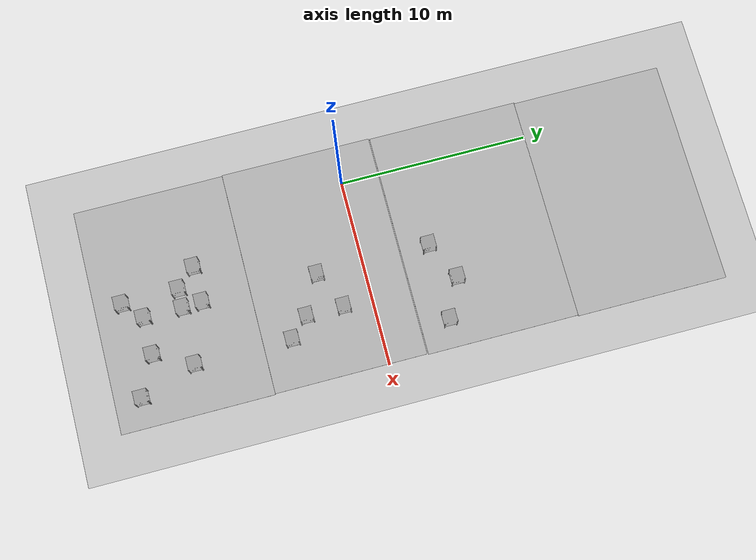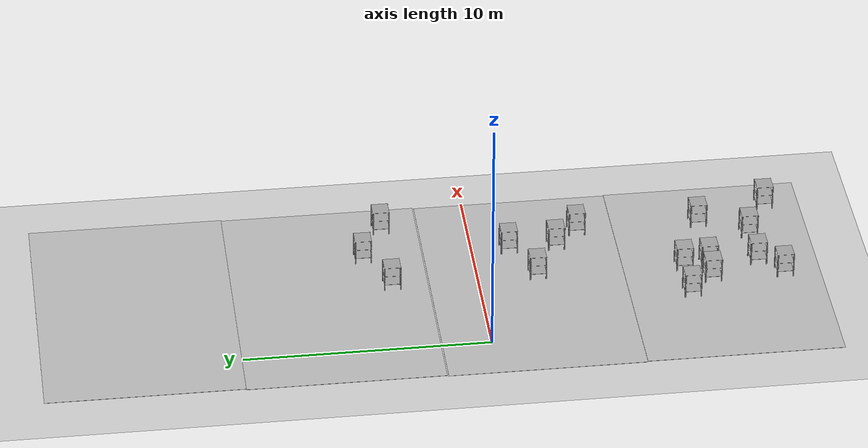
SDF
<sdf version="1.7">
 <world name="default">
  <light name="sun" type="directional">
   <pose>0 0 10 0 -0 0</pose>
   <diffuse>0.8 0.8 0.8 1</diffuse>
   <specular>0.2 0.2 0.2 1</specular>
   <attenuation>
    <range>1000</range>
    <constant>0.9</constant>
    <linear>0.01</linear>
    <quadratic>0.001</quadratic>
   </attenuation>
   <direction>-0.5 0.1 -0.9</direction>
   <spot><inner_angle>0</inner_angle><outer_angle>0</outer_angle><falloff>0</falloff></spot>
  </light>
  <model name="ground_plane">
   <static>1</static>
   <link name="link">
    <collision name="collision">
     <geometry><plane><normal>0 0 1</normal><size>100 100</size></plane></geometry>
     <surface><friction><ode><mu>100</mu><mu2>50</mu2></ode></friction></surface>
    </collision>
    <visual name="visual">
     <cast_shadows>0</cast_shadows>
     <geometry><plane><normal>0 0 1</normal><size>100 100</size></plane></geometry>
     <material>
      <script><uri>file://media/materials/scripts/gazebo.material</uri><name>Gazebo/Grey</name></script>
     </material>
    </visual>
   </link>
  </model>
  <gravity>0 0 -9.8</gravity>
  <magnetic_field>6e-06 2.3e-05 -4.2e-05</magnetic_field>
  <atmosphere type="adiabatic"/>
  <physics type="ode">
   <max_step_size>0.001</max_step_size>
   <real_time_factor>1</real_time_factor>
   <real_time_update_rate>1000</real_time_update_rate>
  </physics>
  <scene><ambient>0.4 0.4 0.4 1</ambient><background>0.7 0.7 0.7 1</background><shadows>1</shadows></scene>
  <spherical_coordinates>
   <surface_model>EARTH_WGS84</surface_model>
   <latitude_deg>0</latitude_deg>
   <longitude_deg>0</longitude_deg>
   <elevation>0</elevation>
   <heading_deg>0</heading_deg>
  </spherical_coordinates>
  <model name="warehouse">
   <static>1</static>
   <link name="link">
    <collision name="collision">
     <geometry><mesh><uri>model://warehouse/meshes/warehouse.dae</uri><scale>1 1 1</scale></mesh></geometry>
    </collision>
    <visual name="visual">
     <geometry><mesh><uri>model://warehouse/meshes/warehouse.dae</uri><scale>1 1 1</scale></mesh></geometry>
    </visual>
   </link>
   <pose>3.97584 6.05262 0 0 -0 0</pose>
  </model>
  <model name="warehouse_clone">
   <static>1</static>
   <link name="link">
    <collision name="collision">
     <geometry><mesh><uri>model://warehouse/meshes/warehouse.dae</uri><scale>1 1 1</scale></mesh></geometry>
    </collision>
    <visual name="visual">
     <geometry><mesh><uri>model://warehouse/meshes/warehouse.dae</uri><scale>1 1 1</scale></mesh></geometry>
    </visual>
   </link>
   <pose>3.93539 -2.00112 0 0 -0 0</pose>
  </model>
  <model name="warehouse_clone_clone">
   <static>1</static>
   <link name="link">
    <collision name="collision">
     <geometry><mesh><uri>model://warehouse/meshes/warehouse.dae</uri><scale>1 1 1</scale></mesh></geometry>
    </collision>
    <visual name="visual">
     <geometry><mesh><uri>model://warehouse/meshes/warehouse.dae</uri><scale>1 1 1</scale></mesh></geometry>
    </visual>
   </link>
   <pose>3.97866 -10.0042 0 0 -0 0</pose>
  </model>
  <model name="warehouse_clone_0">
   <static>1</static>
   <link name="link">
    <collision name="collision">
     <geometry><mesh><uri>model://warehouse/meshes/warehouse.dae</uri><scale>1 1 1</scale></mesh></geometry>
    </collision>
    <visual name="visual">
     <geometry><mesh><uri>model://warehouse/meshes/warehouse.dae</uri><scale>1 1 1</scale></mesh></geometry>
    </visual>
   </link>
   <pose>4.02465 14.0396 0 0 -0 0</pose>
  </model>
  <model name="shelf">
   <link name="link">
    <inertial>
     <mass>0.1</mass>
     <inertia><ixx>1</ixx><ixy>0</ixy><ixz>0</ixz><iyy>1</iyy><iyz>0</iyz><izz>1</izz></inertia>
    </inertial>
    <visual name="visual">
     <geometry><mesh><uri>model://shelf/meshes/shelf.dae</uri><scale>1 1 1</scale></mesh></geometry>
    </visual>
    <collision name="collision">
     <geometry><mesh><uri>model://shelf/meshes/shelf.dae</uri><scale>1 1 1</scale></mesh></geometry>
     <surface>
      <friction>
       <ode><mu>1</mu><mu2>1</mu2><fdir1>0 0 0</fdir1><slip1>0</slip1><slip2>0</slip2></ode>
       <torsional>
        <coefficient>1</coefficient>
        <patch_radius>1</patch_radius>
        <surface_radius>1</surface_radius>
        <use_patch_radius>1</use_patch_radius>
        <ode><slip>0</slip></ode>
       </torsional>
      </friction>
      <bounce><restitution_coefficient>1</restitution_coefficient><threshold>1e+06</threshold></bounce>
      <contact>
       <collide_without_contact>0</collide_without_contact>
       <collide_without_contact_bitmask>1</collide_without_contact_bitmask>
       <collide_bitmask>1</collide_bitmask>
       <ode>
        <soft_cfm>0</soft_cfm>
        <soft_erp>0.2</soft_erp>
        <kp>1e+13</kp>
        <kd>1</kd>
        <max_vel>0.01</max_vel>
        <min_depth>0</min_depth>
       </ode>
       <bullet>
        <split_impulse>1</split_impulse>
        <split_impulse_penetration_threshold>-0.01</split_impulse_penetration_threshold>
        <soft_cfm>0</soft_cfm>
        <soft_erp>0.2</soft_erp>
        <kp>1e+13</kp>
        <kd>1</kd>
       </bullet>
      </contact>
     </surface>
    </collision>
   </link>
   <static>0</static>
   <pose>6.51832 -3.49742 0 0 -0 0</pose>
  </model>
  <model name="shelf_clone_0">
   <link name="link">
    <inertial>
     <mass>0.1</mass>
     <inertia><ixx>1</ixx><ixy>0</ixy><ixz>0</ixz><iyy>1</iyy><iyz>0</iyz><izz>1</izz></inertia>
    </inertial>
    <visual name="visual">
     <geometry><mesh><uri>model://shelf/meshes/shelf.dae</uri><scale>1 1 1</scale></mesh></geometry>
    </visual>
    <collision name="collision">
     <geometry><mesh><uri>model://shelf/meshes/shelf.dae</uri><scale>1 1 1</scale></mesh></geometry>
     <surface>
      <friction>
       <ode><mu>1</mu><mu2>1</mu2><fdir1>0 0 0</fdir1><slip1>0</slip1><slip2>0</slip2></ode>
       <torsional>
        <coefficient>1</coefficient>
        <patch_radius>1</patch_radius>
        <surface_radius>1</surface_radius>
        <use_patch_radius>1</use_patch_radius>
        <ode><slip>0</slip></ode>
       </torsional>
      </friction>
      <bounce><restitution_coefficient>1</restitution_coefficient><threshold>1e+06</threshold></bounce>
      <contact>
       <collide_without_contact>0</collide_without_contact>
       <collide_without_contact_bitmask>1</collide_without_contact_bitmask>
       <collide_bitmask>1</collide_bitmask>
       <ode>
        <soft_cfm>0</soft_cfm>
        <soft_erp>0.2</soft_erp>
        <kp>1e+13</kp>
        <kd>1</kd>
        <max_vel>0.01</max_vel>
        <min_depth>0</min_depth>
       </ode>
       <bullet>
        <split_impulse>1</split_impulse>
        <split_impulse_penetration_threshold>-0.01</split_impulse_penetration_threshold>
        <soft_cfm>0</soft_cfm>
        <soft_erp>0.2</soft_erp>
        <kp>1e+13</kp>
        <kd>1</kd>
       </bullet>
      </contact>
     </surface>
    </collision>
   </link>
   <static>0</static>
   <pose>4.5161 -2.45788 0 0 -0 0</pose>
  </model>
  <model name="shelf_clone">
   <link name="link">
    <inertial>
     <mass>0.1</mass>
     <inertia><ixx>1</ixx><ixy>0</ixy><ixz>0</ixz><iyy>1</iyy><iyz>0</iyz><izz>1</izz></inertia>
    </inertial>
    <visual name="visual">
     <geometry><mesh><uri>model://shelf/meshes/shelf.dae</uri><scale>1 1 1</scale></mesh></geometry>
    </visual>
    <collision name="collision">
     <geometry><mesh><uri>model://shelf/meshes/shelf.dae</uri><scale>1 1 1</scale></mesh></geometry>
     <surface>
      <friction>
       <ode><mu>1</mu><mu2>1</mu2><fdir1>0 0 0</fdir1><slip1>0</slip1><slip2>0</slip2></ode>
       <torsional>
        <coefficient>1</coefficient>
        <patch_radius>1</patch_radius>
        <surface_radius>1</surface_radius>
        <use_patch_radius>1</use_patch_radius>
        <ode><slip>0</slip></ode>
       </torsional>
      </friction>
      <bounce><restitution_coefficient>1</restitution_coefficient><threshold>1e+06</threshold></bounce>
      <contact>
       <collide_without_contact>0</collide_without_contact>
       <collide_without_contact_bitmask>1</collide_without_contact_bitmask>
       <collide_bitmask>1</collide_bitmask>
       <ode>
        <soft_cfm>0</soft_cfm>
        <soft_erp>0.2</soft_erp>
        <kp>1e+13</kp>
        <kd>1</kd>
        <max_vel>0.01</max_vel>
        <min_depth>0</min_depth>
       </ode>
       <bullet>
        <split_impulse>1</split_impulse>
        <split_impulse_penetration_threshold>-0.01</split_impulse_penetration_threshold>
        <soft_cfm>0</soft_cfm>
        <soft_erp>0.2</soft_erp>
        <kp>1e+13</kp>
        <kd>1</kd>
       </bullet>
      </contact>
     </surface>
    </collision>
   </link>
   <static>0</static>
   <pose>6.50738 -1.53286 0 0 -0 0</pose>
  </model>
  <model name="shelf_clone_clone">
   <link name="link">
    <inertial>
     <mass>0.1</mass>
     <inertia><ixx>1</ixx><ixy>0</ixy><ixz>0</ixz><iyy>1</iyy><iyz>0</iyz><izz>1</izz></inertia>
    </inertial>
    <visual name="visual">
     <geometry><mesh><uri>model://shelf/meshes/shelf.dae</uri><scale>1 1 1</scale></mesh></geometry>
    </visual>
    <collision name="collision">
     <geometry><mesh><uri>model://shelf/meshes/shelf.dae</uri><scale>1 1 1</scale></mesh></geometry>
     <surface>
      <friction>
       <ode><mu>1</mu><mu2>1</mu2><fdir1>0 0 0</fdir1><slip1>0</slip1><slip2>0</slip2></ode>
       <torsional>
        <coefficient>1</coefficient>
        <patch_radius>1</patch_radius>
        <surface_radius>1</surface_radius>
        <use_patch_radius>1</use_patch_radius>
        <ode><slip>0</slip></ode>
       </torsional>
      </friction>
      <bounce><restitution_coefficient>1</restitution_coefficient><threshold>1e+06</threshold></bounce>
      <contact>
       <collide_without_contact>0</collide_without_contact>
       <collide_without_contact_bitmask>1</collide_without_contact_bitmask>
       <collide_bitmask>1</collide_bitmask>
       <ode>
        <soft_cfm>0</soft_cfm>
        <soft_erp>0.2</soft_erp>
        <kp>1e+13</kp>
        <kd>1</kd>
        <max_vel>0.01</max_vel>
        <min_depth>0</min_depth>
       </ode>
       <bullet>
        <split_impulse>1</split_impulse>
        <split_impulse_penetration_threshold>-0.01</split_impulse_penetration_threshold>
        <soft_cfm>0</soft_cfm>
        <soft_erp>0.2</soft_erp>
        <kp>1e+13</kp>
        <kd>1</kd>
       </bullet>
      </contact>
     </surface>
    </collision>
   </link>
   <static>0</static>
   <pose>7.4953 -4.48691 0 0 -0 0</pose>
  </model>
  <model name="shelf_clone_clone_0">
   <link name="link">
    <inertial>
     <mass>0.1</mass>
     <inertia><ixx>1</ixx><ixy>0</ixy><ixz>0</ixz><iyy>1</iyy><iyz>0</iyz><izz>1</izz></inertia>
    </inertial>
    <visual name="visual">
     <geometry><mesh><uri>model://shelf/meshes/shelf.dae</uri><scale>1 1 1</scale></mesh></geometry>
    </visual>
    <collision name="collision">
     <geometry><mesh><uri>model://shelf/meshes/shelf.dae</uri><scale>1 1 1</scale></mesh></geometry>
     <surface>
      <friction>
       <ode><mu>1</mu><mu2>1</mu2><fdir1>0 0 0</fdir1><slip1>0</slip1><slip2>0</slip2></ode>
       <torsional>
        <coefficient>1</coefficient>
        <patch_radius>1</patch_radius>
        <surface_radius>1</surface_radius>
        <use_patch_radius>1</use_patch_radius>
        <ode><slip>0</slip></ode>
       </torsional>
      </friction>
      <bounce><restitution_coefficient>1</restitution_coefficient><threshold>1e+06</threshold></bounce>
      <contact>
       <collide_without_contact>0</collide_without_contact>
       <collide_without_contact_bitmask>1</collide_without_contact_bitmask>
       <collide_bitmask>1</collide_bitmask>
       <ode>
        <soft_cfm>0</soft_cfm>
        <soft_erp>0.2</soft_erp>
        <kp>1e+13</kp>
        <kd>1</kd>
        <max_vel>0.01</max_vel>
        <min_depth>0</min_depth>
       </ode>
       <bullet>
        <split_impulse>1</split_impulse>
        <split_impulse_penetration_threshold>-0.01</split_impulse_penetration_threshold>
        <soft_cfm>0</soft_cfm>
        <soft_erp>0.2</soft_erp>
        <kp>1e+13</kp>
        <kd>1</kd>
       </bullet>
      </contact>
     </surface>
    </collision>
   </link>
   <static>0</static>
   <pose>7.48567 -9.57472 0 0 -0 0</pose>
  </model>
  <model name="shelf_clone_clone_1">
   <link name="link">
    <inertial>
     <mass>0.1</mass>
     <inertia><ixx>1</ixx><ixy>0</ixy><ixz>0</ixz><iyy>1</iyy><iyz>0</iyz><izz>1</izz></inertia>
    </inertial>
    <visual name="visual">
     <geometry><mesh><uri>model://shelf/meshes/shelf.dae</uri><scale>1 1 1</scale></mesh></geometry>
    </visual>
    <collision name="collision">
     <geometry><mesh><uri>model://shelf/meshes/shelf.dae</uri><scale>1 1 1</scale></mesh></geometry>
     <surface>
      <friction>
       <ode><mu>1</mu><mu2>1</mu2><fdir1>0 0 0</fdir1><slip1>0</slip1><slip2>0</slip2></ode>
       <torsional>
        <coefficient>1</coefficient>
        <patch_radius>1</patch_radius>
        <surface_radius>1</surface_radius>
        <use_patch_radius>1</use_patch_radius>
        <ode><slip>0</slip></ode>
       </torsional>
      </friction>
      <bounce><restitution_coefficient>1</restitution_coefficient><threshold>1e+06</threshold></bounce>
      <contact>
       <collide_without_contact>0</collide_without_contact>
       <collide_without_contact_bitmask>1</collide_without_contact_bitmask>
       <collide_bitmask>1</collide_bitmask>
       <ode>
        <soft_cfm>0</soft_cfm>
        <soft_erp>0.2</soft_erp>
        <kp>1e+13</kp>
        <kd>1</kd>
        <max_vel>0.01</max_vel>
        <min_depth>0</min_depth>
       </ode>
       <bullet>
        <split_impulse>1</split_impulse>
        <split_impulse_penetration_threshold>-0.01</split_impulse_penetration_threshold>
        <soft_cfm>0</soft_cfm>
        <soft_erp>0.2</soft_erp>
        <kp>1e+13</kp>
        <kd>1</kd>
       </bullet>
      </contact>
     </surface>
    </collision>
   </link>
   <static>0</static>
   <pose>6.45776 -11.5438 0 0 -0 0</pose>
  </model>
  <model name="shelf_clone_clone_2">
   <link name="link">
    <inertial>
     <mass>0.1</mass>
     <inertia><ixx>1</ixx><ixy>0</ixy><ixz>0</ixz><iyy>1</iyy><iyz>0</iyz><izz>1</izz></inertia>
    </inertial>
    <visual name="visual">
     <geometry><mesh><uri>model://shelf/meshes/shelf.dae</uri><scale>1 1 1</scale></mesh></geometry>
    </visual>
    <collision name="collision">
     <geometry><mesh><uri>model://shelf/meshes/shelf.dae</uri><scale>1 1 1</scale></mesh></geometry>
     <surface>
      <friction>
       <ode><mu>1</mu><mu2>1</mu2><fdir1>0 0 0</fdir1><slip1>0</slip1><slip2>0</slip2></ode>
       <torsional>
        <coefficient>1</coefficient>
        <patch_radius>1</patch_radius>
        <surface_radius>1</surface_radius>
        <use_patch_radius>1</use_patch_radius>
        <ode><slip>0</slip></ode>
       </torsional>
      </friction>
      <bounce><restitution_coefficient>1</restitution_coefficient><threshold>1e+06</threshold></bounce>
      <contact>
       <collide_without_contact>0</collide_without_contact>
       <collide_without_contact_bitmask>1</collide_without_contact_bitmask>
       <collide_bitmask>1</collide_bitmask>
       <ode>
        <soft_cfm>0</soft_cfm>
        <soft_erp>0.2</soft_erp>
        <kp>1e+13</kp>
        <kd>1</kd>
        <max_vel>0.01</max_vel>
        <min_depth>0</min_depth>
       </ode>
       <bullet>
        <split_impulse>1</split_impulse>
        <split_impulse_penetration_threshold>-0.01</split_impulse_penetration_threshold>
        <soft_cfm>0</soft_cfm>
        <soft_erp>0.2</soft_erp>
        <kp>1e+13</kp>
        <kd>1</kd>
       </bullet>
      </contact>
     </surface>
    </collision>
   </link>
   <static>0</static>
   <pose>4.42444 -8.50036 0 0 -0 0</pose>
  </model>
  <model name="shelf_clone_clone_3">
   <link name="link">
    <inertial>
     <mass>0.1</mass>
     <inertia><ixx>1</ixx><ixy>0</ixy><ixz>0</ixz><iyy>1</iyy><iyz>0</iyz><izz>1</izz></inertia>
    </inertial>
    <visual name="visual">
     <geometry><mesh><uri>model://shelf/meshes/shelf.dae</uri><scale>1 1 1</scale></mesh></geometry>
    </visual>
    <collision name="collision">
     <geometry><mesh><uri>model://shelf/meshes/shelf.dae</uri><scale>1 1 1</scale></mesh></geometry>
     <surface>
      <friction>
       <ode><mu>1</mu><mu2>1</mu2><fdir1>0 0 0</fdir1><slip1>0</slip1><slip2>0</slip2></ode>
       <torsional>
        <coefficient>1</coefficient>
        <patch_radius>1</patch_radius>
        <surface_radius>1</surface_radius>
        <use_patch_radius>1</use_patch_radius>
        <ode><slip>0</slip></ode>
       </torsional>
      </friction>
      <bounce><restitution_coefficient>1</restitution_coefficient><threshold>1e+06</threshold></bounce>
      <contact>
       <collide_without_contact>0</collide_without_contact>
       <collide_without_contact_bitmask>1</collide_without_contact_bitmask>
       <collide_bitmask>1</collide_bitmask>
       <ode>
        <soft_cfm>0</soft_cfm>
        <soft_erp>0.2</soft_erp>
        <kp>1e+13</kp>
        <kd>1</kd>
        <max_vel>0.01</max_vel>
        <min_depth>0</min_depth>
       </ode>
       <bullet>
        <split_impulse>1</split_impulse>
        <split_impulse_penetration_threshold>-0.01</split_impulse_penetration_threshold>
        <soft_cfm>0</soft_cfm>
        <soft_erp>0.2</soft_erp>
        <kp>1e+13</kp>
        <kd>1</kd>
       </bullet>
      </contact>
     </surface>
    </collision>
   </link>
   <static>0</static>
   <pose>2.52032 -8.53075 0 0 -0 0</pose>
  </model>
  <model name="shelf_clone_clone_4">
   <link name="link">
    <inertial>
     <mass>0.1</mass>
     <inertia><ixx>1</ixx><ixy>0</ixy><ixz>0</ixz><iyy>1</iyy><iyz>0</iyz><izz>1</izz></inertia>
    </inertial>
    <visual name="visual">
     <geometry><mesh><uri>model://shelf/meshes/shelf.dae</uri><scale>1 1 1</scale></mesh></geometry>
    </visual>
    <collision name="collision">
     <geometry><mesh><uri>model://shelf/meshes/shelf.dae</uri><scale>1 1 1</scale></mesh></geometry>
     <surface>
      <friction>
       <ode><mu>1</mu><mu2>1</mu2><fdir1>0 0 0</fdir1><slip1>0</slip1><slip2>0</slip2></ode>
       <torsional>
        <coefficient>1</coefficient>
        <patch_radius>1</patch_radius>
        <surface_radius>1</surface_radius>
        <use_patch_radius>1</use_patch_radius>
        <ode><slip>0</slip></ode>
       </torsional>
      </friction>
      <bounce><restitution_coefficient>1</restitution_coefficient><threshold>1e+06</threshold></bounce>
      <contact>
       <collide_without_contact>0</collide_without_contact>
       <collide_without_contact_bitmask>1</collide_without_contact_bitmask>
       <collide_bitmask>1</collide_bitmask>
       <ode>
        <soft_cfm>0</soft_cfm>
        <soft_erp>0.2</soft_erp>
        <kp>1e+13</kp>
        <kd>1</kd>
        <max_vel>0.01</max_vel>
        <min_depth>0</min_depth>
       </ode>
       <bullet>
        <split_impulse>1</split_impulse>
        <split_impulse_penetration_threshold>-0.01</split_impulse_penetration_threshold>
        <soft_cfm>0</soft_cfm>
        <soft_erp>0.2</soft_erp>
        <kp>1e+13</kp>
        <kd>1</kd>
       </bullet>
      </contact>
     </surface>
    </collision>
   </link>
   <static>0</static>
   <pose>3.46882 -9.53002 0 0 -0 0</pose>
  </model>
  <model name="shelf_clone_clone_5">
   <link name="link">
    <inertial>
     <mass>0.1</mass>
     <inertia><ixx>1</ixx><ixy>0</ixy><ixz>0</ixz><iyy>1</iyy><iyz>0</iyz><izz>1</izz></inertia>
    </inertial>
    <visual name="visual">
     <geometry><mesh><uri>model://shelf/meshes/shelf.dae</uri><scale>1 1 1</scale></mesh></geometry>
    </visual>
    <collision name="collision">
     <geometry><mesh><uri>model://shelf/meshes/shelf.dae</uri><scale>1 1 1</scale></mesh></geometry>
     <surface>
      <friction>
       <ode><mu>1</mu><mu2>1</mu2><fdir1>0 0 0</fdir1><slip1>0</slip1><slip2>0</slip2></ode>
       <torsional>
        <coefficient>1</coefficient>
        <patch_radius>1</patch_radius>
        <surface_radius>1</surface_radius>
        <use_patch_radius>1</use_patch_radius>
        <ode><slip>0</slip></ode>
       </torsional>
      </friction>
      <bounce><restitution_coefficient>1</restitution_coefficient><threshold>1e+06</threshold></bounce>
      <contact>
       <collide_without_contact>0</collide_without_contact>
       <collide_without_contact_bitmask>1</collide_without_contact_bitmask>
       <collide_bitmask>1</collide_bitmask>
       <ode>
        <soft_cfm>0</soft_cfm>
        <soft_erp>0.2</soft_erp>
        <kp>1e+13</kp>
        <kd>1</kd>
        <max_vel>0.01</max_vel>
        <min_depth>0</min_depth>
       </ode>
       <bullet>
        <split_impulse>1</split_impulse>
        <split_impulse_penetration_threshold>-0.01</split_impulse_penetration_threshold>
        <soft_cfm>0</soft_cfm>
        <soft_erp>0.2</soft_erp>
        <kp>1e+13</kp>
        <kd>1</kd>
       </bullet>
      </contact>
     </surface>
    </collision>
   </link>
   <static>0</static>
   <pose>4.47207 -9.53829 0 0 -0 0</pose>
  </model>
  <model name="shelf_clone_clone_6">
   <link name="link">
    <inertial>
     <mass>0.1</mass>
     <inertia><ixx>1</ixx><ixy>0</ixy><ixz>0</ixz><iyy>1</iyy><iyz>0</iyz><izz>1</izz></inertia>
    </inertial>
    <visual name="visual">
     <geometry><mesh><uri>model://shelf/meshes/shelf.dae</uri><scale>1 1 1</scale></mesh></geometry>
    </visual>
    <collision name="collision">
     <geometry><mesh><uri>model://shelf/meshes/shelf.dae</uri><scale>1 1 1</scale></mesh></geometry>
     <surface>
      <friction>
       <ode><mu>1</mu><mu2>1</mu2><fdir1>0 0 0</fdir1><slip1>0</slip1><slip2>0</slip2></ode>
       <torsional>
        <coefficient>1</coefficient>
        <patch_radius>1</patch_radius>
        <surface_radius>1</surface_radius>
        <use_patch_radius>1</use_patch_radius>
        <ode><slip>0</slip></ode>
       </torsional>
      </friction>
      <bounce><restitution_coefficient>1</restitution_coefficient><threshold>1e+06</threshold></bounce>
      <contact>
       <collide_without_contact>0</collide_without_contact>
       <collide_without_contact_bitmask>1</collide_without_contact_bitmask>
       <collide_bitmask>1</collide_bitmask>
       <ode>
        <soft_cfm>0</soft_cfm>
        <soft_erp>0.2</soft_erp>
        <kp>1e+13</kp>
        <kd>1</kd>
        <max_vel>0.01</max_vel>
        <min_depth>0</min_depth>
       </ode>
       <bullet>
        <split_impulse>1</split_impulse>
        <split_impulse_penetration_threshold>-0.01</split_impulse_penetration_threshold>
        <soft_cfm>0</soft_cfm>
        <soft_erp>0.2</soft_erp>
        <kp>1e+13</kp>
        <kd>1</kd>
       </bullet>
      </contact>
     </surface>
    </collision>
   </link>
   <static>0</static>
   <pose>3.50628 -12.5062 0 0 -0 0</pose>
  </model>
  <model name="shelf_clone_clone_7">
   <link name="link">
    <inertial>
     <mass>0.1</mass>
     <inertia><ixx>1</ixx><ixy>0</ixy><ixz>0</ixz><iyy>1</iyy><iyz>0</iyz><izz>1</izz></inertia>
    </inertial>
    <visual name="visual">
     <geometry><mesh><uri>model://shelf/meshes/shelf.dae</uri><scale>1 1 1</scale></mesh></geometry>
    </visual>
    <collision name="collision">
     <geometry><mesh><uri>model://shelf/meshes/shelf.dae</uri><scale>1 1 1</scale></mesh></geometry>
     <surface>
      <friction>
       <ode><mu>1</mu><mu2>1</mu2><fdir1>0 0 0</fdir1><slip1>0</slip1><slip2>0</slip2></ode>
       <torsional>
        <coefficient>1</coefficient>
        <patch_radius>1</patch_radius>
        <surface_radius>1</surface_radius>
        <use_patch_radius>1</use_patch_radius>
        <ode><slip>0</slip></ode>
       </torsional>
      </friction>
      <bounce><restitution_coefficient>1</restitution_coefficient><threshold>1e+06</threshold></bounce>
      <contact>
       <collide_without_contact>0</collide_without_contact>
       <collide_without_contact_bitmask>1</collide_without_contact_bitmask>
       <collide_bitmask>1</collide_bitmask>
       <ode>
        <soft_cfm>0</soft_cfm>
        <soft_erp>0.2</soft_erp>
        <kp>1e+13</kp>
        <kd>1</kd>
        <max_vel>0.01</max_vel>
        <min_depth>0</min_depth>
       </ode>
       <bullet>
        <split_impulse>1</split_impulse>
        <split_impulse_penetration_threshold>-0.01</split_impulse_penetration_threshold>
        <soft_cfm>0</soft_cfm>
        <soft_erp>0.2</soft_erp>
        <kp>1e+13</kp>
        <kd>1</kd>
       </bullet>
      </contact>
     </surface>
    </collision>
   </link>
   <static>0</static>
   <pose>4.48065 -11.5735 0 0 -0 0</pose>
  </model>
  <model name="shelf_clone_clone_8">
   <link name="link">
    <inertial>
     <mass>0.1</mass>
     <inertia><ixx>1</ixx><ixy>0</ixy><ixz>0</ixz><iyy>1</iyy><iyz>0</iyz><izz>1</izz></inertia>
    </inertial>
    <visual name="visual">
     <geometry><mesh><uri>model://shelf/meshes/shelf.dae</uri><scale>1 1 1</scale></mesh></geometry>
    </visual>
    <collision name="collision">
     <geometry><mesh><uri>model://shelf/meshes/shelf.dae</uri><scale>1 1 1</scale></mesh></geometry>
     <surface>
      <friction>
       <ode><mu>1</mu><mu2>1</mu2><fdir1>0 0 0</fdir1><slip1>0</slip1><slip2>0</slip2></ode>
       <torsional>
        <coefficient>1</coefficient>
        <patch_radius>1</patch_radius>
        <surface_radius>1</surface_radius>
        <use_patch_radius>1</use_patch_radius>
        <ode><slip>0</slip></ode>
       </torsional>
      </friction>
      <bounce><restitution_coefficient>1</restitution_coefficient><threshold>1e+06</threshold></bounce>
      <contact>
       <collide_without_contact>0</collide_without_contact>
       <collide_without_contact_bitmask>1</collide_without_contact_bitmask>
       <collide_bitmask>1</collide_bitmask>
       <ode>
        <soft_cfm>0</soft_cfm>
        <soft_erp>0.2</soft_erp>
        <kp>1e+13</kp>
        <kd>1</kd>
        <max_vel>0.01</max_vel>
        <min_depth>0</min_depth>
       </ode>
       <bullet>
        <split_impulse>1</split_impulse>
        <split_impulse_penetration_threshold>-0.01</split_impulse_penetration_threshold>
        <soft_cfm>0</soft_cfm>
        <soft_erp>0.2</soft_erp>
        <kp>1e+13</kp>
        <kd>1</kd>
       </bullet>
      </contact>
     </surface>
    </collision>
   </link>
   <static>0</static>
   <pose>8.49217 -12.5322 0 0 -0 0</pose>
  </model>
  <model name="shelf_clone_clone_9">
   <link name="link">
    <inertial>
     <mass>0.1</mass>
     <inertia><ixx>1</ixx><ixy>0</ixy><ixz>0</ixz><iyy>1</iyy><iyz>0</iyz><izz>1</izz></inertia>
    </inertial>
    <visual name="visual">
     <geometry><mesh><uri>model://shelf/meshes/shelf.dae</uri><scale>1 1 1</scale></mesh></geometry>
    </visual>
    <collision name="collision">
     <geometry><mesh><uri>model://shelf/meshes/shelf.dae</uri><scale>1 1 1</scale></mesh></geometry>
     <surface>
      <friction>
       <ode><mu>1</mu><mu2>1</mu2><fdir1>0 0 0</fdir1><slip1>0</slip1><slip2>0</slip2></ode>
       <torsional>
        <coefficient>1</coefficient>
        <patch_radius>1</patch_radius>
        <surface_radius>1</surface_radius>
        <use_patch_radius>1</use_patch_radius>
        <ode><slip>0</slip></ode>
       </torsional>
      </friction>
      <bounce><restitution_coefficient>1</restitution_coefficient><threshold>1e+06</threshold></bounce>
      <contact>
       <collide_without_contact>0</collide_without_contact>
       <collide_without_contact_bitmask>1</collide_without_contact_bitmask>
       <collide_bitmask>1</collide_bitmask>
       <ode>
        <soft_cfm>0</soft_cfm>
        <soft_erp>0.2</soft_erp>
        <kp>1e+13</kp>
        <kd>1</kd>
        <max_vel>0.01</max_vel>
        <min_depth>0</min_depth>
       </ode>
       <bullet>
        <split_impulse>1</split_impulse>
        <split_impulse_penetration_threshold>-0.01</split_impulse_penetration_threshold>
        <soft_cfm>0</soft_cfm>
        <soft_erp>0.2</soft_erp>
        <kp>1e+13</kp>
        <kd>1</kd>
       </bullet>
      </contact>
     </surface>
    </collision>
   </link>
   <static>0</static>
   <pose>4.48169 3.52665 0 0 -0 0</pose>
  </model>
  <model name="shelf_clone_clone_10">
   <link name="link">
    <inertial>
     <mass>0.1</mass>
     <inertia><ixx>1</ixx><ixy>0</ixy><ixz>0</ixz><iyy>1</iyy><iyz>0</iyz><izz>1</izz></inertia>
    </inertial>
    <visual name="visual">
     <geometry><mesh><uri>model://shelf/meshes/shelf.dae</uri><scale>1 1 1</scale></mesh></geometry>
    </visual>
    <collision name="collision">
     <geometry><mesh><uri>model://shelf/meshes/shelf.dae</uri><scale>1 1 1</scale></mesh></geometry>
     <surface>
      <friction>
       <ode><mu>1</mu><mu2>1</mu2><fdir1>0 0 0</fdir1><slip1>0</slip1><slip2>0</slip2></ode>
       <torsional>
        <coefficient>1</coefficient>
        <patch_radius>1</patch_radius>
        <surface_radius>1</surface_radius>
        <use_patch_radius>1</use_patch_radius>
        <ode><slip>0</slip></ode>
       </torsional>
      </friction>
      <bounce><restitution_coefficient>1</restitution_coefficient><threshold>1e+06</threshold></bounce>
      <contact>
       <collide_without_contact>0</collide_without_contact>
       <collide_without_contact_bitmask>1</collide_without_contact_bitmask>
       <collide_bitmask>1</collide_bitmask>
       <ode>
        <soft_cfm>0</soft_cfm>
        <soft_erp>0.2</soft_erp>
        <kp>1e+13</kp>
        <kd>1</kd>
        <max_vel>0.01</max_vel>
        <min_depth>0</min_depth>
       </ode>
       <bullet>
        <split_impulse>1</split_impulse>
        <split_impulse_penetration_threshold>-0.01</split_impulse_penetration_threshold>
        <soft_cfm>0</soft_cfm>
        <soft_erp>0.2</soft_erp>
        <kp>1e+13</kp>
        <kd>1</kd>
       </bullet>
      </contact>
     </surface>
    </collision>
   </link>
   <static>0</static>
   <pose>6.51298 4.50277 0 0 -0 0</pose>
  </model>
  <model name="shelf_clone_clone_11">
   <link name="link">
    <inertial>
     <mass>0.1</mass>
     <inertia><ixx>1</ixx><ixy>0</ixy><ixz>0</ixz><iyy>1</iyy><iyz>0</iyz><izz>1</izz></inertia>
    </inertial>
    <visual name="visual">
     <geometry><mesh><uri>model://shelf/meshes/shelf.dae</uri><scale>1 1 1</scale></mesh></geometry>
    </visual>
    <collision name="collision">
     <geometry><mesh><uri>model://shelf/meshes/shelf.dae</uri><scale>1 1 1</scale></mesh></geometry>
     <surface>
      <friction>
       <ode><mu>1</mu><mu2>1</mu2><fdir1>0 0 0</fdir1><slip1>0</slip1><slip2>0</slip2></ode>
       <torsional>
        <coefficient>1</coefficient>
        <patch_radius>1</patch_radius>
        <surface_radius>1</surface_radius>
        <use_patch_radius>1</use_patch_radius>
        <ode><slip>0</slip></ode>
       </torsional>
      </friction>
      <bounce><restitution_coefficient>1</restitution_coefficient><threshold>1e+06</threshold></bounce>
      <contact>
       <collide_without_contact>0</collide_without_contact>
       <collide_without_contact_bitmask>1</collide_without_contact_bitmask>
       <collide_bitmask>1</collide_bitmask>
       <ode>
        <soft_cfm>0</soft_cfm>
        <soft_erp>0.2</soft_erp>
        <kp>1e+13</kp>
        <kd>1</kd>
        <max_vel>0.01</max_vel>
        <min_depth>0</min_depth>
       </ode>
       <bullet>
        <split_impulse>1</split_impulse>
        <split_impulse_penetration_threshold>-0.01</split_impulse_penetration_threshold>
        <soft_cfm>0</soft_cfm>
        <soft_erp>0.2</soft_erp>
        <kp>1e+13</kp>
        <kd>1</kd>
       </bullet>
      </contact>
     </surface>
    </collision>
   </link>
   <static>0</static>
   <pose>8.52335 3.54941 0 0 -0 0</pose>
  </model>
 </world>
</sdf>
